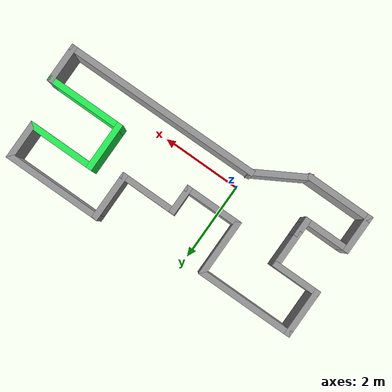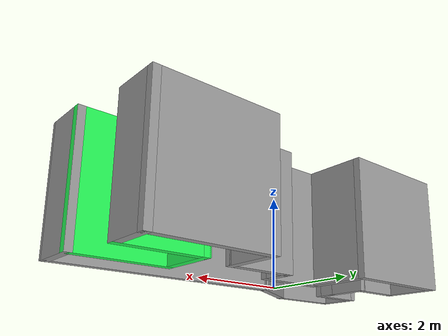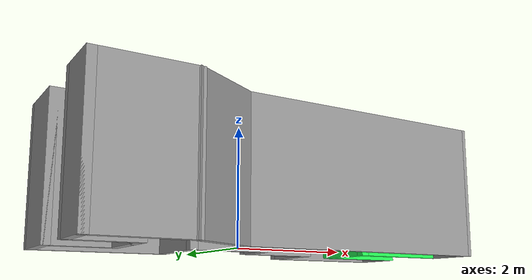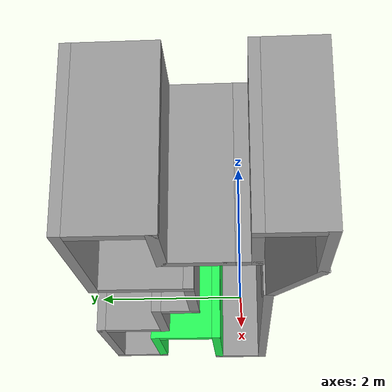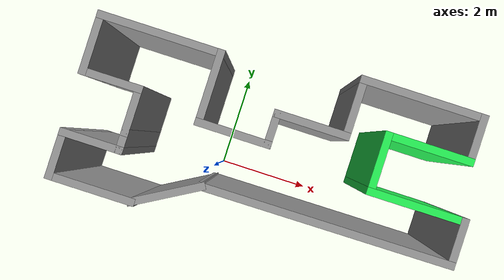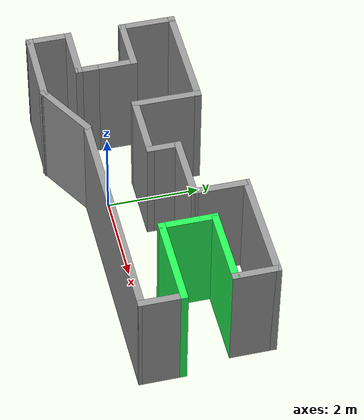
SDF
<?xml version='1.0'?>
<sdf version='1.7'>
  <model name='open_maze_2'>
    <pose>0.994632 0.654149 0 0 -0 0</pose>
    <link name='Wall_10'>
      <collision name='Wall_10_Collision'>
        <geometry>
          <box>
            <size>1.5 0.15 2.5</size>
          </box>
        </geometry>
        <pose>0 0 1.25 0 -0 0</pose>
      </collision>
      <visual name='Wall_10_Visual'>
        <pose>0 0 1.25 0 -0 0</pose>
        <geometry>
          <box>
            <size>1.5 0.15 2.5</size>
          </box>
        </geometry>
        <material>
          <script>
            <uri>file://media/materials/scripts/gazebo.material</uri>
            <name>Gazebo/Grey</name>
          </script>
          <ambient>1 1 1 1</ambient>
        </material>
        <meta>
          <layer>0</layer>
        </meta>
      </visual>
      <pose>0.549808 0.663726 0 0 -0 3.14159</pose>
    </link>
    <link name='Wall_11'>
      <collision name='Wall_11_Collision'>
        <geometry>
          <box>
            <size>0.75 0.15 2.5</size>
          </box>
        </geometry>
        <pose>0 0 1.25 0 -0 0</pose>
      </collision>
      <visual name='Wall_11_Visual'>
        <pose>0 0 1.25 0 -0 0</pose>
        <geometry>
          <box>
            <size>0.75 0.15 2.5</size>
          </box>
        </geometry>
        <material>
          <script>
            <uri>file://media/materials/scripts/gazebo.material</uri>
            <name>Gazebo/Grey</name>
          </script>
          <ambient>1 1 1 1</ambient>
        </material>
        <meta>
          <layer>0</layer>
        </meta>
      </visual>
      <pose>-0.125192 0.363726 0 0 -0 -1.5708</pose>
    </link>
    <link name='Wall_12'>
      <collision name='Wall_12_Collision'>
        <geometry>
          <box>
            <size>1.5 0.15 2.5</size>
          </box>
        </geometry>
        <pose>0 0 1.25 0 -0 0</pose>
      </collision>
      <visual name='Wall_12_Visual'>
        <pose>0 0 1.25 0 -0 0</pose>
        <geometry>
          <box>
            <size>1.5 0.15 2.5</size>
          </box>
        </geometry>
        <material>
          <script>
            <uri>file://media/materials/scripts/gazebo.material</uri>
            <name>Gazebo/Grey</name>
          </script>
          <ambient>1 1 1 1</ambient>
        </material>
        <meta>
          <layer>0</layer>
        </meta>
      </visual>
      <pose>-0.800192 0.063726 0 0 -0 3.14159</pose>
    </link>
    <link name='Wall_13'>
      <collision name='Wall_13_Collision'>
        <geometry>
          <box>
            <size>1.5 0.15 2.5</size>
          </box>
        </geometry>
        <pose>0 0 1.25 0 -0 0</pose>
      </collision>
      <visual name='Wall_13_Visual'>
        <pose>0 0 1.25 0 -0 0</pose>
        <geometry>
          <box>
            <size>1.5 0.15 2.5</size>
          </box>
        </geometry>
        <material>
          <script>
            <uri>file://media/materials/scripts/gazebo.material</uri>
            <name>Gazebo/Grey</name>
          </script>
          <ambient>1 1 1 1</ambient>
        </material>
        <meta>
          <layer>0</layer>
        </meta>
      </visual>
      <pose>-1.47519 0.738726 0 0 -0 1.5708</pose>
    </link>
    <link name='Wall_14'>
      <collision name='Wall_14_Collision'>
        <geometry>
          <box>
            <size>2.5 0.15 2.5</size>
          </box>
        </geometry>
        <pose>0 0 1.25 0 -0 0</pose>
      </collision>
      <visual name='Wall_14_Visual'>
        <pose>0 0 1.25 0 -0 0</pose>
        <geometry>
          <box>
            <size>2.5 0.15 2.5</size>
          </box>
        </geometry>
        <material>
          <script>
            <uri>file://media/materials/scripts/gazebo.material</uri>
            <name>Gazebo/Grey</name>
          </script>
          <ambient>1 1 1 1</ambient>
        </material>
        <meta>
          <layer>0</layer>
        </meta>
      </visual>
      <pose>-2.65019 1.41373 0 0 -0 3.14159</pose>
    </link>
    <link name='Wall_15'>
      <collision name='Wall_15_Collision'>
        <geometry>
          <box>
            <size>1.25 0.15 2.5</size>
          </box>
        </geometry>
        <pose>0 0 1.25 0 -0 0</pose>
      </collision>
      <visual name='Wall_15_Visual'>
        <pose>0 0 1.25 0 -0 0</pose>
        <geometry>
          <box>
            <size>1.25 0.15 2.5</size>
          </box>
        </geometry>
        <material>
          <script>
            <uri>file://media/materials/scripts/gazebo.material</uri>
            <name>Gazebo/Grey</name>
          </script>
          <ambient>1 1 1 1</ambient>
        </material>
        <meta>
          <layer>0</layer>
        </meta>
      </visual>
      <pose>-3.82519 0.863726 0 0 -0 -1.5708</pose>
    </link>
    <link name='Wall_16'>
      <collision name='Wall_16_Collision'>
        <geometry>
          <box>
            <size>1.25 0.15 2.5</size>
          </box>
        </geometry>
        <pose>0 0 1.25 0 -0 0</pose>
      </collision>
      <visual name='Wall_16_Visual'>
        <pose>0 0 1.25 0 -0 0</pose>
        <geometry>
          <box>
            <size>1.25 0.15 2.5</size>
          </box>
        </geometry>
        <material>
          <script>
            <uri>file://media/materials/scripts/gazebo.material</uri>
            <name>Gazebo/Grey</name>
          </script>
          <ambient>1 1 1 1</ambient>
        </material>
        <meta>
          <layer>0</layer>
        </meta>
      </visual>
      <pose>-3.27519 0.313726 0 0 -0 0</pose>
    </link>
    <link name='Wall_17'>
      <collision name='Wall_17_Collision'>
        <geometry>
          <box>
            <size>1 0.15 2.5</size>
          </box>
        </geometry>
        <pose>0 0 1.25 0 -0 0</pose>
      </collision>
      <visual name='Wall_17_Visual'>
        <pose>0 0 1.25 0 -0 0</pose>
        <geometry>
          <box>
            <size>1 0.15 2.5</size>
          </box>
        </geometry>
        <material>
          <script>
            <uri>file://media/materials/scripts/gazebo.material</uri>
            <name>Gazebo/Grey</name>
          </script>
          <ambient>1 1 1 1</ambient>
        </material>
        <meta>
          <layer>0</layer>
        </meta>
      </visual>
      <pose>-2.72519 -0.111274 0 0 -0 -1.5708</pose>
    </link>
    <link name='Wall_18'>
      <collision name='Wall_18_Collision'>
        <geometry>
          <box>
            <size>0.5 0.15 2.5</size>
          </box>
        </geometry>
        <pose>0 0 1.25 0 -0 0</pose>
      </collision>
      <visual name='Wall_18_Visual'>
        <pose>0 0 1.25 0 -0 0</pose>
        <geometry>
          <box>
            <size>0.5 0.15 2.5</size>
          </box>
        </geometry>
        <material>
          <script>
            <uri>file://media/materials/scripts/gazebo.material</uri>
            <name>Gazebo/Grey</name>
          </script>
          <ambient>1 1 1 1</ambient>
        </material>
        <meta>
          <layer>0</layer>
        </meta>
      </visual>
      <pose>-2.72519 -0.711274 0 0 -0 -1.5708</pose>
    </link>
    <link name='Wall_19'>
      <collision name='Wall_19_Collision'>
        <geometry>
          <box>
            <size>1.25 0.15 2.5</size>
          </box>
        </geometry>
        <pose>0 0 1.25 0 -0 0</pose>
      </collision>
      <visual name='Wall_19_Visual'>
        <pose>0 0 1.25 0 -0 0</pose>
        <geometry>
          <box>
            <size>1.25 0.15 2.5</size>
          </box>
        </geometry>
        <material>
          <script>
            <uri>file://media/materials/scripts/gazebo.material</uri>
            <name>Gazebo/Grey</name>
          </script>
          <ambient>1 1 1 1</ambient>
        </material>
        <meta>
          <layer>0</layer>
        </meta>
      </visual>
      <pose>-3.27519 -0.886274 0 0 -0 3.14159</pose>
    </link>
    <link name='Wall_24'>
      <collision name='Wall_24_Collision'>
        <geometry>
          <box>
            <size>1 0.15 2.5</size>
          </box>
        </geometry>
        <pose>0 0 1.25 0 -0 0</pose>
      </collision>
      <visual name='Wall_24_Visual'>
        <pose>0 0 1.25 0 -0 0</pose>
        <geometry>
          <box>
            <size>1 0.15 2.5</size>
          </box>
        </geometry>
        <material>
          <script>
            <uri>file://media/materials/scripts/gazebo.material</uri>
            <name>Gazebo/Grey</name>
          </script>
          <ambient>1 1 1 1</ambient>
        </material>
        <meta>
          <layer>0</layer>
        </meta>
      </visual>
      <pose>-3.82519 -1.31127 0 0 -0 -1.5708</pose>
    </link>
    <link name='Wall_25'>
      <collision name='Wall_25_Collision'>
        <geometry>
          <box>
            <size>1.75 0.15 2.5</size>
          </box>
        </geometry>
        <pose>0 0 1.25 0 -0 0</pose>
      </collision>
      <visual name='Wall_25_Visual'>
        <pose>0 0 1.25 0 -0 0</pose>
        <geometry>
          <box>
            <size>1.75 0.15 2.5</size>
          </box>
        </geometry>
        <material>
          <script>
            <uri>file://media/materials/scripts/gazebo.material</uri>
            <name>Gazebo/Grey</name>
          </script>
          <ambient>1 1 1 1</ambient>
        </material>
        <meta>
          <layer>0</layer>
        </meta>
      </visual>
      <pose>-3.02519 -1.73627 0 0 -0 0</pose>
    </link>
    <link name='Wall_26'>
      <collision name='Wall_26_Collision'>
        <geometry>
          <box>
            <size>1.5 0.15 2.5</size>
          </box>
        </geometry>
        <pose>0 0 1.25 0 -0 0</pose>
      </collision>
      <visual name='Wall_26_Visual'>
        <pose>0 0 1.25 0 -0 0</pose>
        <geometry>
          <box>
            <size>1.5 0.15 2.5</size>
          </box>
        </geometry>
        <material>
          <script>
            <uri>file://media/materials/scripts/gazebo.material</uri>
            <name>Gazebo/Grey</name>
          </script>
          <ambient>1 1 1 1</ambient>
        </material>
        <meta>
          <layer>0</layer>
        </meta>
      </visual>
      <pose>-1.64062 -1.39877 0 0 -0 0.523599</pose>
    </link>
    <link name='Wall_28'>
      <collision name='Wall_28_Collision'>
        <geometry>
          <box>
            <size>5.03093 0.15 2.5</size>
          </box>
        </geometry>
        <pose>0 0 1.25 0 -0 0</pose>
      </collision>
      <visual name='Wall_28_Visual'>
        <pose>0 0 1.25 0 -0 0</pose>
        <geometry>
          <box>
            <size>5.03093 0.15 2.5</size>
          </box>
        </geometry>
        <material>
          <script>
            <uri>file://media/materials/scripts/gazebo.material</uri>
            <name>Gazebo/Grey</name>
          </script>
          <ambient>1 1 1 1</ambient>
        </material>
        <meta>
          <layer>0</layer>
        </meta>
      </visual>
      <pose>1.38437 -1.04877 0 0 -0 0.005122</pose>
    </link>
    <link name='Wall_3'>
      <collision name='Wall_3_Collision'>
        <geometry>
          <box>
            <size>1 0.15 2.5</size>
          </box>
        </geometry>
        <pose>0 0 1.25 0 -0 0</pose>
      </collision>
      <visual name='Wall_3_Visual'>
        <pose>0 0 1.25 0 -0 0</pose>
        <geometry>
          <box>
            <size>1 0.15 2.5</size>
          </box>
        </geometry>
        <material>
          <script>
            <uri>file://media/materials/scripts/gazebo.material</uri>
            <name>Gazebo/Grey</name>
          </script>
          <ambient>1 1 1 1</ambient>
        </material>
        <meta>
          <layer>0</layer>
        </meta>
      </visual>
      <pose>3.82481 -0.611274 0 0 -0 1.5708</pose>
    </link>
    <link name='Wall_4'>
      <collision name='Wall_4_Collision'>
        <geometry>
          <box>
            <size>2 0.15 2.5</size>
          </box>
        </geometry>
        <pose>0 0 1.25 0 -0 0</pose>
      </collision>
      <visual name='Wall_4_Visual'>
        <pose>0 0 1.25 0 -0 0</pose>
        <geometry>
          <box>
            <size>2 0.15 2.5</size>
          </box>
        </geometry>
        <material>
          <script>
            <uri>file://media/materials/scripts/gazebo.material</uri>
            <name>Gazebo/Grey</name>
          </script>
          <ambient>0.145098 0.976471 0.337255 1</ambient>
        </material>
        <meta>
          <layer>0</layer>
        </meta>
      </visual>
      <pose>2.89981 -0.186274 0 0 -0 3.14159</pose>
    </link>
    <link name='Wall_5'>
      <collision name='Wall_5_Collision'>
        <geometry>
          <box>
            <size>1.25 0.15 2.5</size>
          </box>
        </geometry>
        <pose>0 0 1.25 0 -0 0</pose>
      </collision>
      <visual name='Wall_5_Visual'>
        <pose>0 0 1.25 0 -0 0</pose>
        <geometry>
          <box>
            <size>1.25 0.15 2.5</size>
          </box>
        </geometry>
        <material>
          <script>
            <uri>file://media/materials/scripts/gazebo.material</uri>
            <name>Gazebo/Grey</name>
          </script>
          <ambient>0.145098 0.976471 0.337255 1</ambient>
        </material>
        <meta>
          <layer>0</layer>
        </meta>
      </visual>
      <pose>1.97481 0.363726 0 0 -0 1.5708</pose>
    </link>
    <link name='Wall_6'>
      <collision name='Wall_6_Collision'>
        <geometry>
          <box>
            <size>1.75 0.15 2.5</size>
          </box>
        </geometry>
        <pose>0 0 1.25 0 -0 0</pose>
      </collision>
      <visual name='Wall_6_Visual'>
        <pose>0 0 1.25 0 -0 0</pose>
        <geometry>
          <box>
            <size>1.75 0.15 2.5</size>
          </box>
        </geometry>
        <material>
          <script>
            <uri>file://media/materials/scripts/gazebo.material</uri>
            <name>Gazebo/Grey</name>
          </script>
          <ambient>0.145098 0.976471 0.337255 1</ambient>
        </material>
        <meta>
          <layer>0</layer>
        </meta>
      </visual>
      <pose>2.77481 0.913726 0 0 -0 0</pose>
    </link>
    <link name='Wall_7'>
      <collision name='Wall_7_Collision'>
        <geometry>
          <box>
            <size>1 0.15 2.5</size>
          </box>
        </geometry>
        <pose>0 0 1.25 0 -0 0</pose>
      </collision>
      <visual name='Wall_7_Visual'>
        <pose>0 0 1.25 0 -0 0</pose>
        <geometry>
          <box>
            <size>1 0.15 2.5</size>
          </box>
        </geometry>
        <material>
          <script>
            <uri>file://media/materials/scripts/gazebo.material</uri>
            <name>Gazebo/Grey</name>
          </script>
          <ambient>1 1 1 1</ambient>
        </material>
        <meta>
          <layer>0</layer>
        </meta>
      </visual>
      <pose>3.57481 1.33873 0 0 -0 1.5708</pose>
    </link>
    <link name='Wall_8'>
      <collision name='Wall_8_Collision'>
        <geometry>
          <box>
            <size>2.5 0.15 2.5</size>
          </box>
        </geometry>
        <pose>0 0 1.25 0 -0 0</pose>
      </collision>
      <visual name='Wall_8_Visual'>
        <pose>0 0 1.25 0 -0 0</pose>
        <geometry>
          <box>
            <size>2.5 0.15 2.5</size>
          </box>
        </geometry>
        <material>
          <script>
            <uri>file://media/materials/scripts/gazebo.material</uri>
            <name>Gazebo/Grey</name>
          </script>
          <ambient>1 1 1 1</ambient>
        </material>
        <meta>
          <layer>0</layer>
        </meta>
      </visual>
      <pose>2.39981 1.76373 0 0 -0 3.14159</pose>
    </link>
    <link name='Wall_9'>
      <collision name='Wall_9_Collision'>
        <geometry>
          <box>
            <size>1.25 0.15 2.5</size>
          </box>
        </geometry>
        <pose>0 0 1.25 0 -0 0</pose>
      </collision>
      <visual name='Wall_9_Visual'>
        <pose>0 0 1.25 0 -0 0</pose>
        <geometry>
          <box>
            <size>1.25 0.15 2.5</size>
          </box>
        </geometry>
        <material>
          <script>
            <uri>file://media/materials/scripts/gazebo.material</uri>
            <name>Gazebo/Grey</name>
          </script>
          <ambient>1 1 1 1</ambient>
        </material>
        <meta>
          <layer>0</layer>
        </meta>
      </visual>
      <pose>1.22481 1.21373 0 0 -0 -1.5708</pose>
    </link>
    <static>1</static>
  </model>
</sdf>
